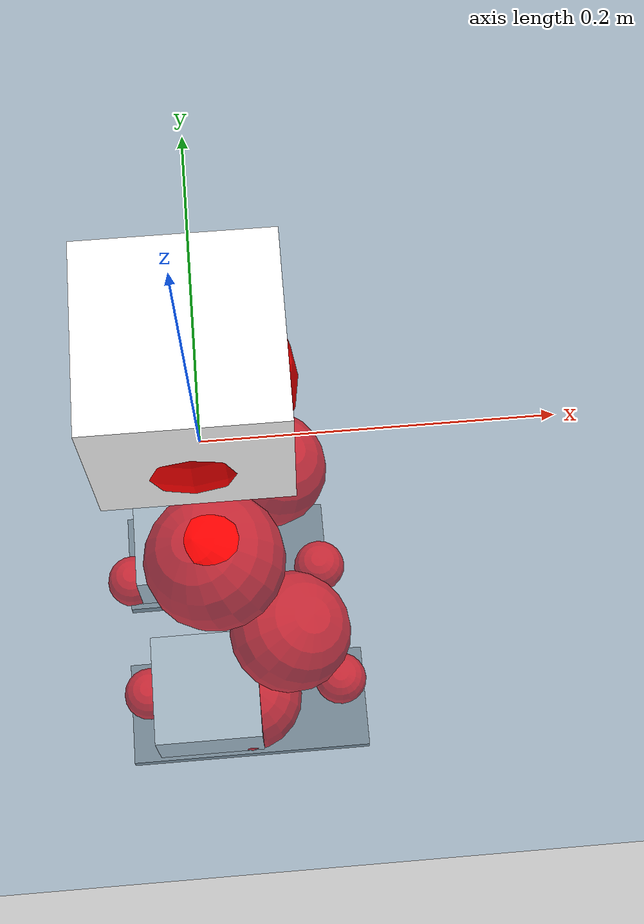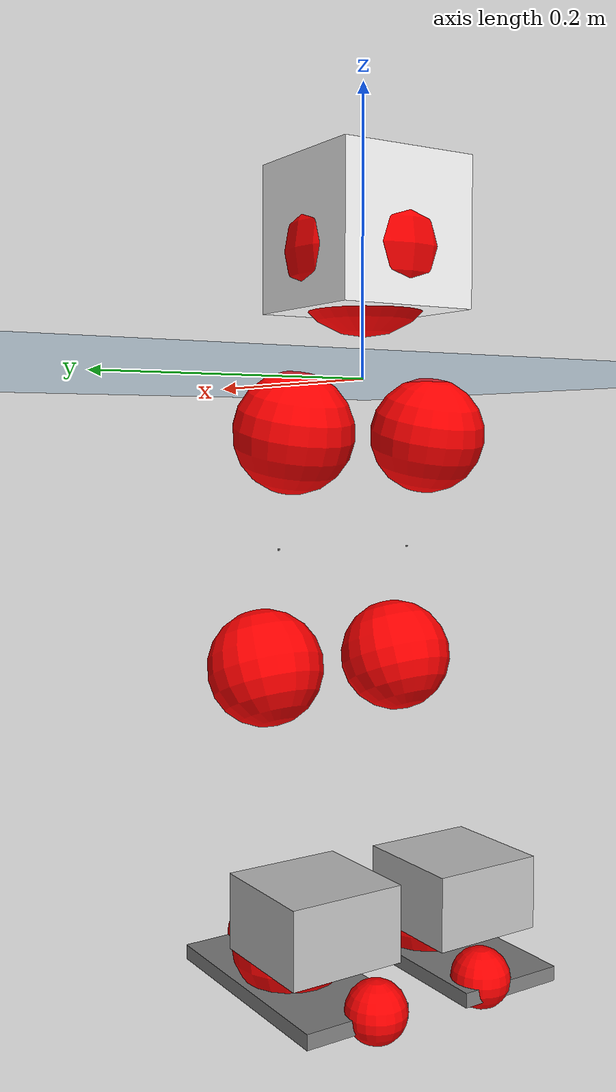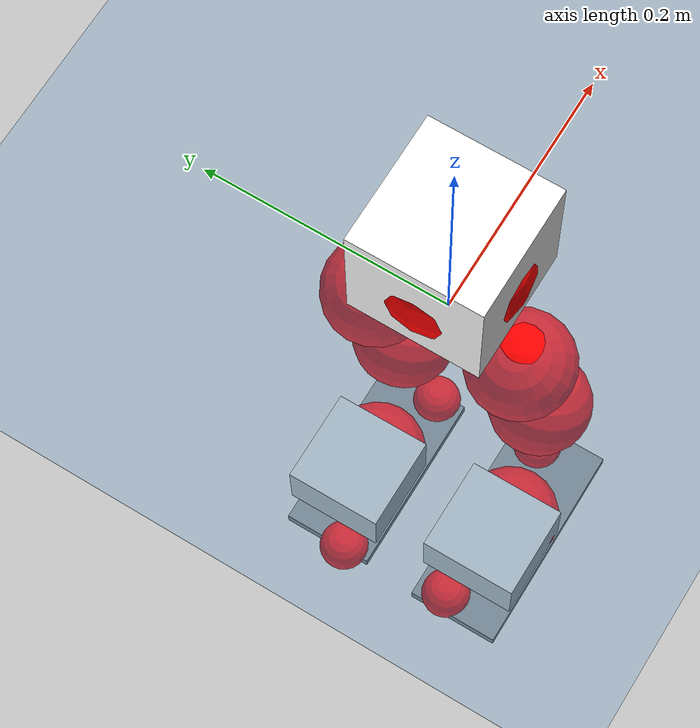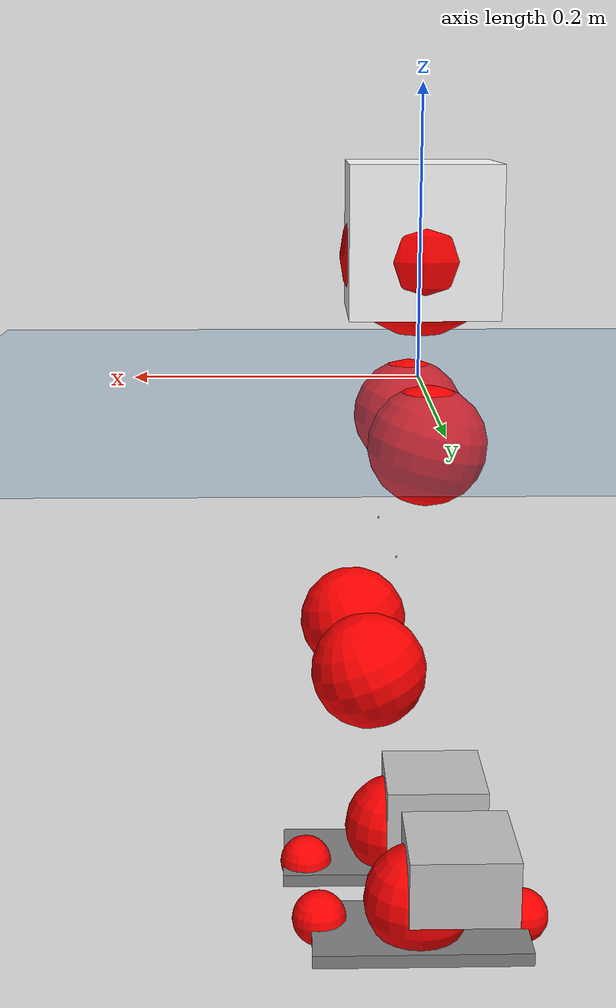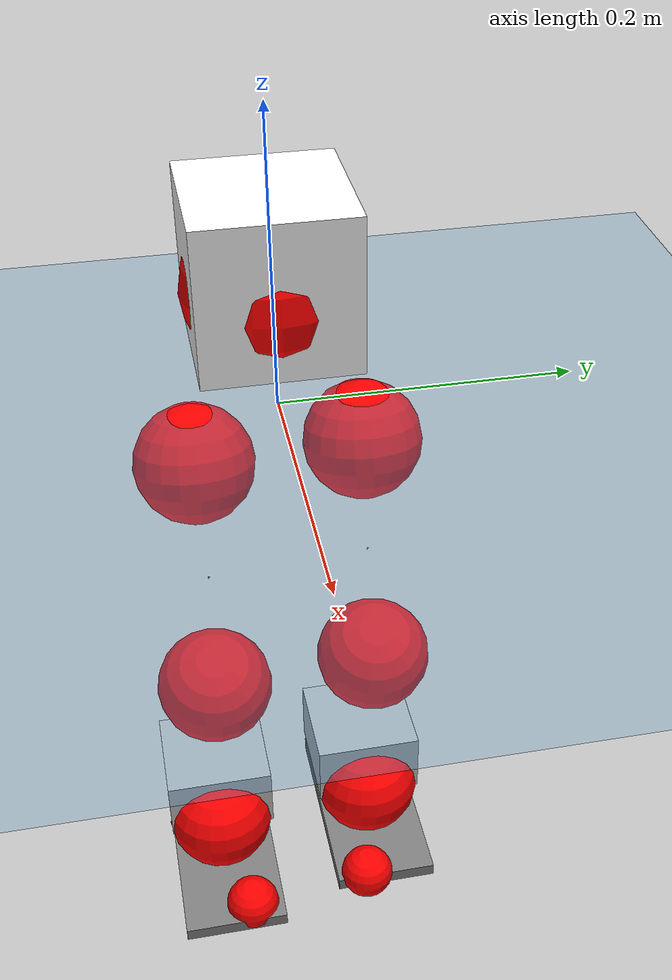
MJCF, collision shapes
<mujoco model="pi_12dof_release_v1">
  <compiler angle="radian" assetdir="assets" balanceinertia="true" inertiafromgeom="false"/>

  <option timestep="0.005" density="1.2" viscosity="2e-05"/>

  <size nkey="1"/>

  <visual>
    <quality shadowsize="8192"/>
    <map shadowclip="0.5"/>
  </visual>

  <default>
    <default class="/">
      <joint armature="0.01" damping="0.01" frictionloss="0.01"/>
      <geom contype="0" conaffinity="0" group="1" solref="-1000 -80"/>
      <site size="0.01 0.005 0.005" group="5"/>
      <general forcelimited="true" biastype="affine" gainprm="20" biasprm="0 -20 -0.5"/>
      <default class="foot">
        <geom size="0.0845 0.036 0.005" type="box" condim="6" group="4" priority="1" friction="0.9 0.2 0.2" solimp="0.015 1 0.005"/>
      </default>
      <default class="reward_collision_sphere">
        <geom group="5" rgba="1 0 0 1"/>
      </default>
    </default>
  </default>

  <asset>
    <texture type="skybox" colorspace="auto" name="//unnamed_texture_0" builtin="gradient" rgb1="0.95 0.95 0.95" rgb2="0.95 0.95 0.95" width="100" height="600"/>
    <texture type="2d" colorspace="auto" name="texplane" builtin="checker" rgb1="0.345 0.575 0.748" rgb2="0.345 0.575 0.748" markrgb="1 1 1" width="512" height="512"/>
    <material name="MatPlane" class="/" texture="texplane" texuniform="true" texrepeat="2 2" specular="0.9"/>
    <mesh name="baselink_1" class="/" file="baselink_1.STL"/>
    <mesh name="r_hip_pitch_link" class="/" file="r_hip_pitch_link.STL"/>
    <mesh name="r_hip_roll_link" class="/" file="r_hip_roll_link.STL"/>
    <mesh name="r_thigh_link" class="/" file="r_thigh_link.STL"/>
    <mesh name="r_calf_link" class="/" file="r_calf_link.STL"/>
    <mesh name="r_ankle_pitch_link" class="/" file="r_ankle_pitch_link.STL"/>
    <mesh name="r_ankle_roll_link" class="/" file="r_ankle_roll_link.STL"/>
    <mesh name="l_hip_pitch_link" class="/" file="l_hip_pitch_link.STL"/>
    <mesh name="l_hip_roll_link" class="/" file="l_hip_roll_link.STL"/>
    <mesh name="l_thigh_link" class="/" file="l_thigh_link.STL"/>
    <mesh name="l_calf_link" class="/" file="l_calf_link.STL"/>
    <mesh name="l_ankle_pitch_link" class="/" file="l_ankle_pitch_link.STL"/>
    <mesh name="l_ankle_roll_link" class="/" file="l_ankle_roll_link.STL"/>
  </asset>

  <worldbody>
    <geom name="floor" class="/" size="100 100 0.125" type="plane" group="0" material="MatPlane"/>
    <light name="toplight_shadow" class="/" pos="0 0 5" dir="0.0990148 0.0990148 -0.990148" type="directional" ambient="0.04 0.04 0.04" diffuse="0.55 0.55 0.55" specular="0.12 0.12 0.12"/>
    <light name="toplight_fill" class="/" pos="0 0 5" dir="0.0990148 0.0990148 -0.990148" type="directional" castshadow="false" ambient="0.04 0.04 0.04" diffuse="0.3 0.3 0.3" specular="0.08 0.08 0.08"/>
    <body name="trunk" pos="-0.000345299 -0.00188882 0.000687848" quat="1 -0.000124858 0.000758246 -0.000572249">
      <inertial pos="0.00147942 -0.0030265 0.0508076" quat="0.699216 0.00820141 0.0103318 0.714789" mass="2.29283" diaginertia="0.0163555 0.00194455 0.010424"/>
      <joint name="//unnamed_joint_0" type="free"/>
      <geom name="//unnamed_geom_1" class="/" type="mesh" density="0" rgba="1 1 1 1" mesh="baselink_1"/>
      <geom name="//unnamed_geom_2" class="/" size="0.0511175 0.0511175 0.0511175" pos="0 0 0.0962039" type="box" rgba="1 1 1 1"/>
      <geom name="//unnamed_geom_3" class="reward_collision_sphere" size="0.0562293" pos="0 0 0.0841785"/>
      <site name="imu" class="/" pos="0.0016048 0.00160189 0.00163335" size="0.0102235"/>
      <camera name="track" class="/" pos="0 -1.48199 0" quat="0.707107 0.707107 0 0" mode="trackcom"/>
      <camera name="ego_camera" class="/" pos="0.0842631 0 0.216459" quat="-0.5 -0.5 0.5 0.5"/>
      <body name="r_hip_pitch_link" pos="0.000152227 -0.0165757 -0.0398261" quat="0.992209 -5.9732e-05 -0.124588 -2.15838e-05">
        <inertial pos="0.000812078 -0.0443703 -0.000115072" quat="-0.0203709 0.702224 -0.0393306 0.710577" mass="0.392681" diaginertia="0.000191212 2.1481e-05 0.000204945"/>
        <joint name="r_hip_pitch_joint" class="/" pos="0 0 0" axis="0.00249398 -0.999994 -0.00254907" range="-1.71445 1.272" armature="0.0101744" damping="0.0266855" frictionloss="0.0116215"/>
        <geom name="//unnamed_geom_4" class="/" type="mesh" density="0" rgba="0.75294 0.75294 0.75294 1" mesh="r_hip_pitch_link"/>
        <geom name="//unnamed_geom_5" class="/" size="0.000511175 0.000511175 0.000511175" type="box" rgba="0.75294 0.75294 0.75294 1"/>
        <body name="r_hip_roll_link" pos="0.00279807 -0.0394517 0.000184153" quat="0.999999 0.000301174 -0.000627408 0.00112296">
          <inertial pos="-0.00289768 0.00175168 -0.0721118" quat="0.705911 -0.0792101 -0.0825313 0.699002" mass="0.420306" diaginertia="0.000578157 6.4233e-05 0.000323678"/>
          <joint name="r_hip_roll_joint" class="/" pos="0 0 0" axis="-0.999991 0.00209419 -0.00368436" stiffness="0.00176812" range="-0.124218 0.485954" armature="0.0115679" damping="0.023048" frictionloss="0.0103673"/>
          <geom name="//unnamed_geom_6" class="/" type="mesh" density="0" rgba="0.75294 0.75294 0.75294 1" mesh="r_hip_roll_link"/>
          <geom name="//unnamed_geom_7" class="/" size="0.000511175 0.000511175 0.000511175" type="box" rgba="0.75294 0.75294 0.75294 1"/>
          <geom name="//unnamed_geom_8" class="reward_collision_sphere" size="0.040894"/>
          <body name="r_thigh_link" pos="0.000891061 0.00145396 -0.0833476" quat="1 -0.000484114 4.34139e-06 -9.29729e-05">
            <inertial pos="-0.00218838 -0.000885533 -0.059706" quat="0.737453 0.675396 -0.00126497 0.00111724" mass="0.117251" diaginertia="0.000219654 2.14151e-05 0.000143207"/>
            <joint name="r_thigh_joint" class="/" pos="0 0 0" axis="0.00918027 -0.00598594 -0.99994" range="-0.355121 0.540492" armature="0.0116371" damping="0" frictionloss="0.0116056"/>
            <geom name="//unnamed_geom_9" class="/" type="mesh" density="0" rgba="0.75294 0.75294 0.75294 1" mesh="r_thigh_link"/>
            <geom name="//unnamed_geom_10" class="/" size="0.000511175 0.000511175 0.000511175" type="box" rgba="0.75294 0.75294 0.75294 1"/>
            <body name="r_calf_link" pos="-0.002172 -0.00359113 -0.085427" quat="0.947721 -0.00040522 0.319099 0.000142294">
              <inertial pos="0.000992293 -0.000700364 -0.0840279" quat="0.999886 -0.0110397 0.0102999 0.000244658" mass="0.876291" diaginertia="0.00617204 0.000781414 0.000439159"/>
              <joint name="r_calf_joint" class="/" pos="0 0 0" axis="0.00948003 -0.999907 0.00976911" range="-1.66945 0.668085" armature="0.0104106" damping="0.00554048" frictionloss="0.0116226"/>
              <geom name="//unnamed_geom_11" class="/" type="mesh" density="0" rgba="0.75294 0.75294 0.75294 1" mesh="r_calf_link"/>
              <geom name="//unnamed_geom_12" class="/" size="0.000511175 0.000511175 0.000511175" type="box" rgba="0.75294 0.75294 0.75294 1"/>
              <geom name="//unnamed_geom_13" class="reward_collision_sphere" size="0.040894"/>
              <body name="r_ankle_pitch_link" pos="0.000225803 -0.00206645 -0.17072" quat="0.980061 3.83369e-05 -0.198696 1.62226e-05">
                <inertial pos="0.00612145 0.00106656 0.00242965" quat="0.00157561 0.707441 -0.00384427 0.70676" mass="0.186212" diaginertia="0.000538073 4.96383e-05 0.000301817"/>
                <joint name="r_ankle_pitch_joint" class="/" pos="0 0 0" axis="-0.005301 -0.999977 -0.00412965" range="-1.3361 0.446472" armature="0.0114498" damping="0.0100011" frictionloss="0.0116124"/>
                <geom name="//unnamed_geom_14" class="/" type="mesh" density="0" rgba="0.75294 0.75294 0.75294 1" mesh="r_ankle_pitch_link"/>
                <geom name="//unnamed_geom_15" class="/" size="0.0398717 0.040894 0.0255588" type="box" rgba="0.75294 0.75294 0.75294 1"/>
                <body name="r_ankle_roll_link" pos="0.0869727 -0.000834855 0.00270545" quat="1 0.000402302 0.000189582 -0.00016821">
                  <inertial pos="-0.0284947 0.00194271 -0.0175141" quat="0.560022 0.430176 0.434617 0.558956" mass="0.571971" diaginertia="0.00209493 0.000244163 0.000721925"/>
                  <joint name="r_ankle_roll_joint" class="/" pos="0 0 0" axis="-0.999938 -0.000235753 -0.0111694" stiffness="0.00853376" range="-0.0988579 0.201766" armature="0.0102714" damping="0.0181522" frictionloss="0.00988871"/>
                  <geom name="//unnamed_geom_16" class="/" type="mesh" density="0" rgba="0.75294 0.75294 0.75294 1" mesh="r_ankle_roll_link"/>
                  <geom name="//unnamed_geom_17" class="/" type="mesh" rgba="0.75294 0.75294 0.75294 1" mesh="r_ankle_roll_link"/>
                  <geom name="right_foot" class="foot" size="0.0922137 0.039149 0.00497064" pos="-0.0572989 0 -0.0529122"/>
                  <geom name="//unnamed_geom_19" class="reward_collision_sphere" size="0.040894" pos="-0.0561754 0 -0.024051"/>
                  <geom name="//unnamed_geom_20" class="reward_collision_sphere" size="0.020447" pos="0.0168526 0.0148199 -0.048102"/>
                  <geom name="//unnamed_geom_21" class="reward_collision_sphere" size="0.020447" pos="-0.134821 0.0148199 -0.048102"/>
                  <site name="right_foot" class="foot" pos="-0.0572989 0 -0.0529122" size="0.0102235"/>
                </body>
              </body>
            </body>
          </body>
        </body>
      </body>
      <body name="l_hip_pitch_link" pos="-0.000452849 0.0181796 -0.0367797" quat="0.992209 0.000323168 -0.124585 -9.01311e-05">
        <inertial pos="-0.000214937 0.0409693 0.00149048" quat="-0.0419415 0.705946 0.0335211 0.706228" mass="0.403573" diaginertia="0.000233084 2.3291e-05 0.000257557"/>
        <joint name="l_hip_pitch_joint" class="/" pos="0 0 0" axis="-0.000857683 0.999996 0.00271471" stiffness="0.00964423" range="-1.26299 1.80698" armature="0.00989142" damping="0.0128946" frictionloss="0.0102202"/>
        <geom name="//unnamed_geom_22" class="/" type="mesh" density="0" rgba="0.75294 0.75294 0.75294 1" mesh="l_hip_pitch_link"/>
        <geom name="//unnamed_geom_23" class="/" size="0.000511175 0.000511175 0.000511175" type="box" rgba="0.75294 0.75294 0.75294 1"/>
        <body name="l_hip_roll_link" pos="-0.00178471 0.040706 -0.000526936" quat="0.999999 -0.000469438 -0.00024255 0.0012365">
          <inertial pos="-0.00391467 0.0024371 -0.0737504" quat="0.698586 -0.0636241 -0.0772563 0.708492" mass="0.400202" diaginertia="0.00058663 6.28171e-05 0.000333239"/>
          <joint name="l_hip_roll_joint" class="/" pos="0 0 0" axis="-0.999968 0.00148494 -0.00787979" range="-0.509902 0.108294" armature="0.0115319" damping="0.00897786" frictionloss="0.00961942"/>
          <geom name="//unnamed_geom_24" class="/" type="mesh" density="0" rgba="0.75294 0.75294 0.75294 1" mesh="l_hip_roll_link"/>
          <geom name="//unnamed_geom_25" class="/" size="0.000511175 0.000511175 0.000511175" type="box" rgba="0.75294 0.75294 0.75294 1"/>
          <geom name="//unnamed_geom_26" class="reward_collision_sphere" size="0.040894"/>
          <body name="l_thigh_link" pos="3.48117e-05 -0.000351497 -0.0812866" quat="1 -4.49933e-05 -1.65784e-05 0.000514439">
            <inertial pos="0.000953328 0.00114345 -0.055747" quat="0.674671 0.738119 -1.73271e-06 -8.17452e-05" mass="0.120067" diaginertia="0.000215113 2.03117e-05 0.000139557"/>
            <joint name="l_thigh_joint" class="/" pos="0 0 0" axis="0.00161178 0.00113054 -0.999998" stiffness="0.00234884" range="-0.611677 0.283065" armature="0.00958193" damping="0" frictionloss="0.00993462"/>
            <geom name="//unnamed_geom_27" class="/" type="mesh" density="0" rgba="0.75294 0.75294 0.75294 1" mesh="l_thigh_link"/>
            <geom name="//unnamed_geom_28" class="/" size="0.000511175 0.000511175 0.000511175" type="box" rgba="0.75294 0.75294 0.75294 1"/>
            <body name="l_calf_link" pos="-0.00302732 0.000211245 -0.0855996" quat="0.947465 0.000400845 0.319857 0.00101646">
              <inertial pos="0.000119922 0.00279754 -0.0825773" quat="0.999982 0.00360072 8.2405e-05 0.00486256" mass="0.858685" diaginertia="0.00622969 0.000767379 0.000448014"/>
              <joint name="l_calf_joint" class="/" pos="0 0 0" axis="-0.00321804 0.999986 -0.00431498" range="-0.597118 1.6617" armature="0.0100123" damping="0.00892996" frictionloss="0.00978909"/>
              <geom name="//unnamed_geom_29" class="/" type="mesh" density="0" rgba="0.75294 0.75294 0.75294 1" mesh="l_calf_link"/>
              <geom name="//unnamed_geom_30" class="/" size="0.000511175 0.000511175 0.000511175" type="box" rgba="0.75294 0.75294 0.75294 1"/>
              <geom name="//unnamed_geom_31" class="reward_collision_sphere" size="0.040894"/>
              <body name="l_ankle_pitch_link" pos="-0.00182934 0.00335829 -0.168287" quat="0.980056 -1.42487e-05 -0.198723 -8.04669e-06">
                <inertial pos="0.0052195 -0.00311075 0.00109791" quat="-0.00543678 0.709174 0.00269856 0.705007" mass="0.183772" diaginertia="0.000546509 4.93851e-05 0.000290584"/>
                <joint name="l_ankle_pitch_joint" class="/" pos="0 0 0" axis="-0.000178396 1 -0.000456794" stiffness="0.0103959" range="-0.479809 1.29364" armature="0.00892702" damping="0.0223128" frictionloss="0.00940674"/>
                <geom name="//unnamed_geom_32" class="/" type="mesh" density="0" rgba="0.75294 0.75294 0.75294 1" mesh="l_ankle_pitch_link"/>
                <geom name="//unnamed_geom_33" class="/" size="0.0398717 0.040894 0.0255588" type="box" rgba="0.75294 0.75294 0.75294 1"/>
                <body name="l_ankle_roll_link" pos="0.085897 -0.000106871 0.00035956" quat="1 2.16725e-05 -1.55553e-05 -1.69738e-05">
                  <inertial pos="-0.0290072 -0.000670638 -0.0183549" quat="0.560127 0.43019 0.433784 0.559487" mass="0.56785" diaginertia="0.00200682 0.000232594 0.000715436"/>
                  <joint name="l_ankle_roll_joint" class="/" pos="0 0 0" axis="-0.999999 0.000406352 -0.00102319" stiffness="0.000648192" range="-0.100023 0.152547" armature="0.0106708" damping="0" frictionloss="0.0103648"/>
                  <geom name="//unnamed_geom_34" class="/" type="mesh" density="0" rgba="0.75294 0.75294 0.75294 1" mesh="l_ankle_roll_link"/>
                  <geom name="//unnamed_geom_35" class="/" type="mesh" rgba="0.75294 0.75294 0.75294 1" mesh="l_ankle_roll_link"/>
                  <geom name="left_foot" class="foot" size="0.0799933 0.0385564 0.00506327" pos="-0.0572989 0 -0.0529122"/>
                  <geom name="//unnamed_geom_37" class="reward_collision_sphere" size="0.040894" pos="-0.0561754 0 -0.024051"/>
                  <geom name="//unnamed_geom_38" class="reward_collision_sphere" size="0.020447" pos="0.0168526 -0.0148199 -0.048102"/>
                  <geom name="//unnamed_geom_39" class="reward_collision_sphere" size="0.020447" pos="-0.134821 -0.0148199 -0.048102"/>
                  <site name="left_foot" class="foot" pos="-0.0572989 0 -0.0529122" size="0.0102235"/>
                </body>
              </body>
            </body>
          </body>
        </body>
      </body>
    </body>
  </worldbody>

  <contact>
    <pair class="/" geom1="floor" geom2="right_foot" name="//unnamed_contact_1"/>
    <pair class="/" geom1="floor" geom2="left_foot" name="//unnamed_contact_0"/>
  </contact>

  <actuator>
    <general name="r_hip_pitch_joint" class="/" joint="r_hip_pitch_joint" forcerange="-21.4445 21.4445" gainprm="20.2162" biasprm="0 -20.2162 -0.517446"/>
    <general name="r_hip_roll_joint" class="/" joint="r_hip_roll_joint" forcerange="-23.5921 23.5921" gainprm="20.2162" biasprm="0 -20.2162 -0.517446"/>
    <general name="r_thigh_joint" class="/" joint="r_thigh_joint" forcerange="-21.4217 21.4217" gainprm="20.2162" biasprm="0 -20.2162 -0.517446"/>
    <general name="r_calf_joint" class="/" joint="r_calf_joint" forcerange="-21.5744 21.5744" gainprm="20.2162" biasprm="0 -20.2162 -0.517446"/>
    <general name="r_ankle_pitch_joint" class="/" joint="r_ankle_pitch_joint" forcerange="-21.352 21.352" gainprm="20.2162" biasprm="0 -20.2162 -0.517446"/>
    <general name="r_ankle_roll_joint" class="/" joint="r_ankle_roll_joint" forcerange="-23.3324 23.3324" gainprm="20.2162" biasprm="0 -20.2162 -0.517446"/>
    <general name="l_hip_pitch_joint" class="/" joint="l_hip_pitch_joint" forcerange="-21.9727 21.9727" gainprm="20.2162" biasprm="0 -20.2162 -0.517446"/>
    <general name="l_hip_roll_joint" class="/" joint="l_hip_roll_joint" forcerange="-21.7606 21.7606" gainprm="20.2162" biasprm="0 -20.2162 -0.517446"/>
    <general name="l_thigh_joint" class="/" joint="l_thigh_joint" forcerange="-21.8495 21.8495" gainprm="20.2162" biasprm="0 -20.2162 -0.517446"/>
    <general name="l_calf_joint" class="/" joint="l_calf_joint" forcerange="-20.8024 20.8024" gainprm="20.2162" biasprm="0 -20.2162 -0.517446"/>
    <general name="l_ankle_pitch_joint" class="/" joint="l_ankle_pitch_joint" forcerange="-21.0095 21.0095" gainprm="20.2162" biasprm="0 -20.2162 -0.517446"/>
    <general name="l_ankle_roll_joint" class="/" joint="l_ankle_roll_joint" forcerange="-19.6388 19.6388" gainprm="20.2162" biasprm="0 -20.2162 -0.517446"/>
  </actuator>

  <sensor>
    <gyro site="imu" name="imu_angular_velocity"/>
    <velocimeter site="imu" name="imu_linear_velocity"/>
    <framelinvel objtype="site" objname="left_foot" name="left_foot_global_linear_velocity"/>
    <framelinvel objtype="site" objname="right_foot" name="right_foot_global_linear_velocity"/>
  </sensor>

  <keyframe>
    <key name="home" qpos="0 0 0.291 1 0 0 0 0.4 0 0 -0.8 0.4 0 -0.4 0 0 0.8 -0.4 0"/>
  </keyframe>
</mujoco>
